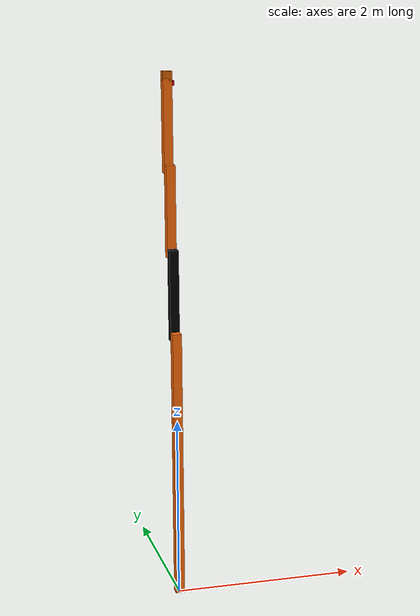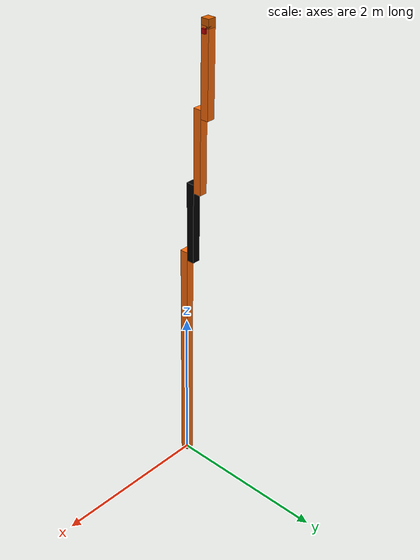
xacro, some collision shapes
<?xml version="1.0"?>
<!-- Revolute-Revolute-Revolute Manipulator -->
<robot name="rrrbot" xmlns:xacro="http://www.ros.org/wiki/xacro">

  <!-- Constants for robot dimensions -->
  <xacro:property name="PI" value="3.1415926535897931"/>
  <xacro:property name="width" value="0.1" /> <!-- Square dimensions (widthxwidth) of beams -->
  <xacro:property name="height1" value="3" /> <!-- Link 1 -->
  <xacro:property name="height2" value="1" /> <!-- Link 2 -->
  <xacro:property name="height3" value="1" /> <!-- Link 3 -->
  <xacro:property name="height4" value="1" /> <!-- Link 4 -->
  <xacro:property name="camera_link" value="0.05" /> <!-- Size of square 'camera' box -->
  <xacro:property name="axel_offset" value="0.05" /> <!-- Space btw top of beam and the each joint -->

  <!-- Import all Gazebo-customization elements, including Gazebo colors -->
  <xacro:include filename="$(find justina_plugins)/robot_test/rrrbot.gazebo" />
  <!-- Import Rviz colors -->
  <xacro:include filename="$(find knowledge)/hardware/materials.xacro" />

  <!-- Used for fixing robot to Gazebo 'base_link' -->
  <link name="world"/>

  <joint name="fixed" type="fixed">
    <parent link="world"/>
    <child link="link1"/>
  </joint>

  <!-- Base Link -->
  <link name="link1">
    <collision>
      <origin xyz="0 0 ${height1/2}" rpy="0 0 0"/>
      <geometry>
	<box size="${width} ${width} ${height1}"/>
      </geometry>
    </collision>

    <visual>
      <origin xyz="0 0 ${height1/2}" rpy="0 0 0"/>
      <geometry>
	<box size="${width} ${width} ${height1}"/>
      </geometry>
      <material name="orange"/>
    </visual>

    <inertial>
      <origin xyz="0 0 ${height1/2}" rpy="0 0 0"/>
      <mass value="1"/>
      <inertia
	  ixx="1.0" ixy="0.0" ixz="0.0"
	  iyy="1.0" iyz="0.0"
	  izz="1.0"/>
    </inertial>
  </link>

  <joint name="joint1" type="continuous">
    <parent link="link1"/>
    <child link="link2"/>
    <origin xyz="0 ${width} ${height1 - axel_offset}" rpy="0 0 0"/>
    <axis xyz="0 1 0"/>
    <dynamics damping="2.0"/>
  </joint>

  <!-- Second Link -->
  <link name="link2">
    <collision>
      <origin xyz="0 0 ${height2/2 - axel_offset}" rpy="0 0 0"/>
      <geometry>
	<box size="${width} ${width} ${height2}"/>
      </geometry>
    </collision>

    <visual>
      <origin xyz="0 0 ${height2/2 - axel_offset}" rpy="0 0 0"/>
      <geometry>
	<box size="${width} ${width} ${height2}"/>
      </geometry>
      <material name="black"/>
    </visual>

    <inertial>
      <origin xyz="0 0 ${height2/2 - axel_offset}" rpy="0 0 0"/>
      <mass value="1"/>
      <inertia
	  ixx="1.0" ixy="0.0" ixz="0.0"
	  iyy="1.0" iyz="0.0"
	  izz="1.0"/>
    </inertial>
  </link>

  <joint name="joint2" type="continuous">
    <parent link="link2"/>
    <child link="link3"/>
    <origin xyz="0 ${width} ${height2 - axel_offset*2}" rpy="0 0 0"/>
    <axis xyz="0 1 0"/>
    <dynamics damping="2.0"/>
  </joint>

  <!-- Third Link -->
  <link name="link3">
    <collision>
      <origin xyz="0 0 ${height3/2 - axel_offset}" rpy="0 0 0"/>
      <geometry>
	<box size="${width} ${width} ${height3}"/>
      </geometry>
    </collision>

    <visual>
      <origin xyz="0 0 ${height3/2 - axel_offset}" rpy="0 0 0"/>
      <geometry>
	<box size="${width} ${width} ${height3}"/>
      </geometry>
      <material name="orange"/>
    </visual>

    <inertial>
      <origin xyz="0 0 ${height3/2 - axel_offset}" rpy="0 0 0"/>
      <mass value="1"/>
      <inertia
	  ixx="1.0" ixy="0.0" ixz="0.0"
	  iyy="1.0" iyz="0.0"
	  izz="1.0"/>
    </inertial>
  </link>

  <joint name="joint3" type="continuous">
    <parent link="link3"/>
    <child link="link4"/>
    <origin xyz="0 ${width} ${height3 - axel_offset*2}" rpy="0 0 0"/>
    <axis xyz="0 1 0"/>
    <dynamics damping="2.0"/>
  </joint>

  <!-- Top Link -->
  <link name="link4">
    <collision>
      <origin xyz="0 0 ${height4/2 - axel_offset}" rpy="0 0 0"/>
      <geometry>
	<box size="${width} ${width} ${height4}"/>
      </geometry>
    </collision>

    <visual>
      <origin xyz="0 0 ${height4/2 - axel_offset}" rpy="0 0 0"/>
      <geometry>
	<box size="${width} ${width} ${height4}"/>
      </geometry>
      <material name="orange"/>
    </visual>

    <inertial>
      <origin xyz="0 0 ${height4/2 - axel_offset}" rpy="0 0 0"/>
      <mass value="1"/>
      <inertia
	  ixx="1.0" ixy="0.0" ixz="0.0"
	  iyy="1.0" iyz="0.0"
	  izz="1.0"/>
    </inertial>
  </link>

  <joint name="hokuyo_joint" type="fixed">
    <axis xyz="0 1 0" />
    <origin xyz="0 0 ${height3 - axel_offset/2}" rpy="0 0 0"/>
    <parent link="link4"/>
    <child link="hokuyo_link"/>
  </joint>

  <!-- Hokuyo Laser -->
  <link name="hokuyo_link">
    <collision>
      <origin xyz="0 0 0" rpy="0 0 0"/>
      <geometry>
	<box size="0.1 0.1 0.1"/>
      </geometry>
    </collision>

    <visual>
      <origin xyz="0 0 0" rpy="0 0 0"/>
      <geometry>
	<mesh filename="package://knowledge/hardware/stl/hokuyo.dae"/>
      </geometry>
    </visual>

    <inertial>
      <mass value="1e-5" />
      <origin xyz="0 0 0" rpy="0 0 0"/>
      <inertia ixx="1e-6" ixy="0" ixz="0" iyy="1e-6" iyz="0" izz="1e-6" />
    </inertial>
  </link>

  <joint name="camera_joint" type="fixed">
    <axis xyz="0 1 0" />
    <origin xyz="${camera_link} 0 ${height4 - axel_offset*2}" rpy="0 0 0"/>
    <parent link="link4"/>
    <child link="camera_link"/>
  </joint>

  <!-- Camera -->
  <link name="camera_link">
    <collision>
      <origin xyz="0 0 0" rpy="0 0 0"/>
      <geometry>
	<box size="${camera_link} ${camera_link} ${camera_link}"/>
      </geometry>
    </collision>

    <visual>
      <origin xyz="0 0 0" rpy="0 0 0"/>
      <geometry>
	<box size="${camera_link} ${camera_link} ${camera_link}"/>
      </geometry>
      <material name="red"/>
    </visual>

    <inertial>
      <mass value="1e-5" />
      <origin xyz="0 0 0" rpy="0 0 0"/>
      <inertia ixx="1e-6" ixy="0" ixz="0" iyy="1e-6" iyz="0" izz="1e-6" />
    </inertial>
  </link>

  <transmission name="tran1">
    <type>transmission_interface/SimpleTransmission</type>
    <joint name="joint1">
      <hardwareInterface>EffortJointInterface</hardwareInterface>
    </joint>
    <actuator name="motor1">
      <hardwareInterface>EffortJointInterface</hardwareInterface>
      <mechanicalReduction>1</mechanicalReduction>
    </actuator>
  </transmission>

  <transmission name="tran2">
    <type>transmission_interface/SimpleTransmission</type>
    <joint name="joint2">
      <hardwareInterface>EffortJointInterface</hardwareInterface>
    </joint>
    <actuator name="motor2">
      <hardwareInterface>EffortJointInterface</hardwareInterface>
      <mechanicalReduction>1</mechanicalReduction>
    </actuator>
  </transmission>

  <transmission name="tran3">
    <type>transmission_interface/SimpleTransmission</type>
    <joint name="joint3">
      <hardwareInterface>EffortJointInterface</hardwareInterface>
    </joint>
    <actuator name="motor3">
      <hardwareInterface>EffortJointInterface</hardwareInterface>
      <mechanicalReduction>1</mechanicalReduction>
    </actuator>
  </transmission>

</robot>

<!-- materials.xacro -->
<robot>

	<material name="black">
		<color rgba="0.0 0.0 0.0 1.0"/>
	</material>

	<material name="blue">
		<color rgba="0.0 0.0 0.8 1.0"/>
	</material>

	<material name="green">
		<color rgba="0.0 0.8 0.0 1.0"/>
	</material>

	<material name="grey">
		<color rgba="0.2 0.2 0.2 1.0"/>
	</material>

	<material name="orange">
		<color rgba="${255/255} ${108/255} ${10/255} 1.0"/>
	</material>

	<material name="brown">
		<color rgba="${222/255} ${207/255} ${195/255} 1.0"/>
	</material>

	<material name="red">
		<color rgba="0.8 0.0 0.0 1.0"/>
	</material>

	<material name="white">
		<color rgba="1.0 1.0 1.0 1.0"/>
	</material>

</robot>
